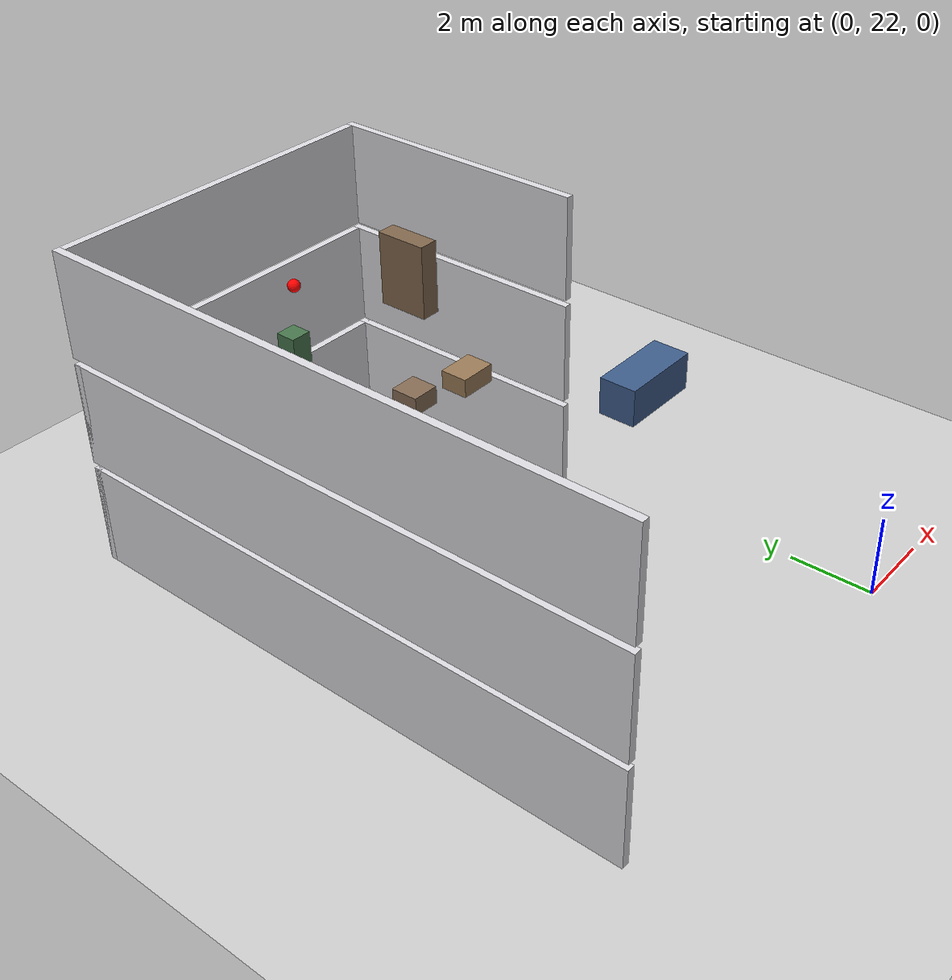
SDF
<sdf version="1.7">
 <world name="generated_world">
  <include><uri>model://sun</uri></include>
  <include><uri>model://ground_plane</uri></include>
  <model name="generated_building">
   <static>true</static>
   <link name="floor_0_room_2_corridor_wall_upper">
    <pose>-1.1900 32.7025 1.2250 0.0000 0.0000 0.0000</pose>
    <collision name="floor_0_room_2_corridor_wall_upper_collision">
     <geometry><box><size>0.1800 6.4150 2.4500</size></box></geometry>
    </collision>
    <visual name="floor_0_room_2_corridor_wall_upper_visual">
     <geometry><box><size>0.1800 6.4150 2.4500</size></box></geometry>
     <material><ambient>0.86 0.86 0.88 1</ambient><diffuse>0.86 0.86 0.88 1</diffuse></material>
    </visual>
    <gravity>false</gravity>
   </link>
   <link name="floor_0_room_2_west_wall">
    <pose>-9.4100 28.8950 1.2250 0.0000 0.0000 0.0000</pose>
    <collision name="floor_0_room_2_west_wall_collision">
     <geometry><box><size>0.1800 14.0300 2.4500</size></box></geometry>
    </collision>
    <visual name="floor_0_room_2_west_wall_visual">
     <geometry><box><size>0.1800 14.0300 2.4500</size></box></geometry>
     <material><ambient>0.86 0.86 0.88 1</ambient><diffuse>0.86 0.86 0.88 1</diffuse></material>
    </visual>
    <gravity>false</gravity>
   </link>
   <link name="floor_0_room_2_north_wall">
    <pose>-5.3000 35.8200 1.2250 0.0000 0.0000 0.0000</pose>
    <collision name="floor_0_room_2_north_wall_collision">
     <geometry><box><size>8.4000 0.1800 2.4500</size></box></geometry>
    </collision>
    <visual name="floor_0_room_2_north_wall_visual">
     <geometry><box><size>8.4000 0.1800 2.4500</size></box></geometry>
     <material><ambient>0.86 0.86 0.88 1</ambient><diffuse>0.86 0.86 0.88 1</diffuse></material>
    </visual>
    <gravity>false</gravity>
   </link>
   <link name="floor_0_room_2_table">
    <pose>-5.3000 28.8950 0.4500 0.0000 0.0000 0.0000</pose>
    <collision name="floor_0_room_2_table_collision">
     <geometry><box><size>2.2000 1.0000 0.7500</size></box></geometry>
    </collision>
    <visual name="floor_0_room_2_table_visual">
     <geometry><box><size>2.2000 1.0000 0.7500</size></box></geometry>
     <material><ambient>0.50 0.38 0.28 1</ambient><diffuse>0.50 0.38 0.28 1</diffuse></material>
    </visual>
    <gravity>false</gravity>
   </link>
   <link name="floor_0_room_2_chair_north">
    <pose>-5.3000 31.9525 0.2800 0.0000 0.0000 0.0000</pose>
    <collision name="floor_0_room_2_chair_north_collision">
     <geometry><box><size>0.5000 0.5000 0.5500</size></box></geometry>
    </collision>
    <visual name="floor_0_room_2_chair_north_visual">
     <geometry><box><size>0.5000 0.5000 0.5500</size></box></geometry>
     <material><ambient>0.30 0.30 0.34 1</ambient><diffuse>0.30 0.30 0.34 1</diffuse></material>
    </visual>
    <gravity>false</gravity>
   </link>
   <link name="floor_0_room_2_chair_west">
    <pose>-7.4500 28.8950 0.2800 0.0000 0.0000 1.5700</pose>
    <collision name="floor_0_room_2_chair_west_collision">
     <geometry><box><size>0.5000 0.5000 0.5500</size></box></geometry>
    </collision>
    <visual name="floor_0_room_2_chair_west_visual">
     <geometry><box><size>0.5000 0.5000 0.5500</size></box></geometry>
     <material><ambient>0.30 0.30 0.34 1</ambient><diffuse>0.30 0.30 0.34 1</diffuse></material>
    </visual>
    <gravity>false</gravity>
   </link>
   <link name="floor_0_room_2_chair_east">
    <pose>-3.1500 28.8950 0.2800 0.0000 0.0000 1.5700</pose>
    <collision name="floor_0_room_2_chair_east_collision">
     <geometry><box><size>0.5000 0.5000 0.5500</size></box></geometry>
    </collision>
    <visual name="floor_0_room_2_chair_east_visual">
     <geometry><box><size>0.5000 0.5000 0.5500</size></box></geometry>
     <material><ambient>0.30 0.30 0.34 1</ambient><diffuse>0.30 0.30 0.34 1</diffuse></material>
    </visual>
    <gravity>false</gravity>
   </link>
   <link name="floor_1_room_2_corridor_wall_upper">
    <pose>-1.1900 32.7025 3.8250 0.0000 0.0000 0.0000</pose>
    <collision name="floor_1_room_2_corridor_wall_upper_collision">
     <geometry><box><size>0.1800 6.4150 2.4500</size></box></geometry>
    </collision>
    <visual name="floor_1_room_2_corridor_wall_upper_visual">
     <geometry><box><size>0.1800 6.4150 2.4500</size></box></geometry>
     <material><ambient>0.86 0.86 0.88 1</ambient><diffuse>0.86 0.86 0.88 1</diffuse></material>
    </visual>
    <gravity>false</gravity>
   </link>
   <link name="floor_1_room_2_west_wall">
    <pose>-9.4100 28.8950 3.8250 0.0000 0.0000 0.0000</pose>
    <collision name="floor_1_room_2_west_wall_collision">
     <geometry><box><size>0.1800 14.0300 2.4500</size></box></geometry>
    </collision>
    <visual name="floor_1_room_2_west_wall_visual">
     <geometry><box><size>0.1800 14.0300 2.4500</size></box></geometry>
     <material><ambient>0.86 0.86 0.88 1</ambient><diffuse>0.86 0.86 0.88 1</diffuse></material>
    </visual>
    <gravity>false</gravity>
   </link>
   <link name="floor_1_room_2_north_wall">
    <pose>-5.3000 35.8200 3.8250 0.0000 0.0000 0.0000</pose>
    <collision name="floor_1_room_2_north_wall_collision">
     <geometry><box><size>8.4000 0.1800 2.4500</size></box></geometry>
    </collision>
    <visual name="floor_1_room_2_north_wall_visual">
     <geometry><box><size>8.4000 0.1800 2.4500</size></box></geometry>
     <material><ambient>0.86 0.86 0.88 1</ambient><diffuse>0.86 0.86 0.88 1</diffuse></material>
    </visual>
    <gravity>false</gravity>
   </link>
   <link name="floor_1_room_2_desk">
    <pose>-7.0000 31.9525 3.0500 0.0000 0.0000 0.0000</pose>
    <collision name="floor_1_room_2_desk_collision">
     <geometry><box><size>1.5000 0.7000 0.7500</size></box></geometry>
    </collision>
    <visual name="floor_1_room_2_desk_visual">
     <geometry><box><size>1.5000 0.7000 0.7500</size></box></geometry>
     <material><ambient>0.54 0.43 0.34 1</ambient><diffuse>0.54 0.43 0.34 1</diffuse></material>
    </visual>
    <gravity>false</gravity>
   </link>
   <link name="floor_1_room_2_chair">
    <pose>-7.0000 31.0525 2.8800 0.0000 0.0000 0.0000</pose>
    <collision name="floor_1_room_2_chair_collision">
     <geometry><box><size>0.5500 0.5500 0.5500</size></box></geometry>
    </collision>
    <visual name="floor_1_room_2_chair_visual">
     <geometry><box><size>0.5500 0.5500 0.5500</size></box></geometry>
     <material><ambient>0.30 0.30 0.34 1</ambient><diffuse>0.30 0.30 0.34 1</diffuse></material>
    </visual>
    <gravity>false</gravity>
   </link>
   <link name="floor_1_room_2_side_table">
    <pose>-3.6000 31.9525 2.9200 0.0000 0.0000 0.0000</pose>
    <collision name="floor_1_room_2_side_table_collision">
     <geometry><box><size>0.7000 0.7000 0.4500</size></box></geometry>
    </collision>
    <visual name="floor_1_room_2_side_table_visual">
     <geometry><box><size>0.7000 0.7000 0.4500</size></box></geometry>
     <material><ambient>0.52 0.42 0.33 1</ambient><diffuse>0.52 0.42 0.33 1</diffuse></material>
    </visual>
    <gravity>false</gravity>
   </link>
   <link name="floor_2_room_2_corridor_wall_upper">
    <pose>-1.1900 32.7025 6.4250 0.0000 0.0000 0.0000</pose>
    <collision name="floor_2_room_2_corridor_wall_upper_collision">
     <geometry><box><size>0.1800 6.4150 2.4500</size></box></geometry>
    </collision>
    <visual name="floor_2_room_2_corridor_wall_upper_visual">
     <geometry><box><size>0.1800 6.4150 2.4500</size></box></geometry>
     <material><ambient>0.86 0.86 0.88 1</ambient><diffuse>0.86 0.86 0.88 1</diffuse></material>
    </visual>
    <gravity>false</gravity>
   </link>
   <link name="floor_2_room_2_west_wall">
    <pose>-9.4100 28.8950 6.4250 0.0000 0.0000 0.0000</pose>
    <collision name="floor_2_room_2_west_wall_collision">
     <geometry><box><size>0.1800 14.0300 2.4500</size></box></geometry>
    </collision>
    <visual name="floor_2_room_2_west_wall_visual">
     <geometry><box><size>0.1800 14.0300 2.4500</size></box></geometry>
     <material><ambient>0.86 0.86 0.88 1</ambient><diffuse>0.86 0.86 0.88 1</diffuse></material>
    </visual>
    <gravity>false</gravity>
   </link>
   <link name="floor_2_room_2_north_wall">
    <pose>-5.3000 35.8200 6.4250 0.0000 0.0000 0.0000</pose>
    <collision name="floor_2_room_2_north_wall_collision">
     <geometry><box><size>8.4000 0.1800 2.4500</size></box></geometry>
    </collision>
    <visual name="floor_2_room_2_north_wall_visual">
     <geometry><box><size>8.4000 0.1800 2.4500</size></box></geometry>
     <material><ambient>0.86 0.86 0.88 1</ambient><diffuse>0.86 0.86 0.88 1</diffuse></material>
    </visual>
    <gravity>false</gravity>
   </link>
   <link name="floor_2_room_2_sofa_b">
    <pose>-3.6000 25.8375 5.6500 0.0000 0.0000 3.1400</pose>
    <collision name="floor_2_room_2_sofa_b_collision">
     <geometry><box><size>1.8000 0.8000 0.8000</size></box></geometry>
    </collision>
    <visual name="floor_2_room_2_sofa_b_visual">
     <geometry><box><size>1.8000 0.8000 0.8000</size></box></geometry>
     <material><ambient>0.24 0.36 0.54 1</ambient><diffuse>0.24 0.36 0.54 1</diffuse></material>
    </visual>
    <gravity>false</gravity>
   </link>
   <link name="floor_2_room_2_coffee_table">
    <pose>-5.3000 28.8950 5.4500 0.0000 0.0000 0.0000</pose>
    <collision name="floor_2_room_2_coffee_table_collision">
     <geometry><box><size>0.8000 0.6000 0.4000</size></box></geometry>
    </collision>
    <visual name="floor_2_room_2_coffee_table_visual">
     <geometry><box><size>0.8000 0.6000 0.4000</size></box></geometry>
     <material><ambient>0.60 0.48 0.34 1</ambient><diffuse>0.60 0.48 0.34 1</diffuse></material>
    </visual>
    <gravity>false</gravity>
   </link>
   <link name="floor_2_room_2_bookshelf">
    <pose>-3.6000 31.9525 6.0500 0.0000 0.0000 0.0000</pose>
    <collision name="floor_2_room_2_bookshelf_collision">
     <geometry><box><size>0.4500 1.2000 1.7000</size></box></geometry>
    </collision>
    <visual name="floor_2_room_2_bookshelf_visual">
     <geometry><box><size>0.4500 1.2000 1.7000</size></box></geometry>
     <material><ambient>0.50 0.40 0.30 1</ambient><diffuse>0.50 0.40 0.30 1</diffuse></material>
    </visual>
    <gravity>false</gravity>
   </link>
   <link name="floor_2_room_2_planter">
    <pose>-7.0000 31.9525 5.6500 0.0000 0.0000 0.0000</pose>
    <collision name="floor_2_room_2_planter_collision">
     <geometry><box><size>0.4500 0.4500 0.9000</size></box></geometry>
    </collision>
    <visual name="floor_2_room_2_planter_visual">
     <geometry><box><size>0.4500 0.4500 0.9000</size></box></geometry>
     <material><ambient>0.28 0.46 0.30 1</ambient><diffuse>0.28 0.46 0.30 1</diffuse></material>
    </visual>
    <gravity>false</gravity>
   </link>
  </model>
  <model name="distractor_red_box_01">
   <static>true</static>
   <pose>-8.833333 26.212664 5.350000 0.000000 0.000000 0.000000</pose>
   <link name="link">
    <collision name="collision">
     <geometry><box><size>0.300000 0.300000 0.300000</size></box></geometry>
    </collision>
    <visual name="visual">
     <geometry><box><size>0.300000 0.300000 0.300000</size></box></geometry>
     <material><ambient>1.0 0.0 0.0 1.0</ambient><diffuse>1.0 0.0 0.0 1.0</diffuse></material>
    </visual>
   </link>
  </model>
  <model name="danger_red_sphere_01">
   <static>true</static>
   <pose>-4.643373 34.214386 2.750000 0.000000 0.000000 0.000000</pose>
   <link name="link">
    <collision name="collision"><geometry><sphere><radius>0.150</radius></sphere></geometry></collision>
    <visual name="visual">
     <geometry><sphere><radius>0.150</radius></sphere></geometry>
     <material><ambient>1.0 0.0 0.0 1.0</ambient><diffuse>1.0 0.0 0.0 1.0</diffuse></material>
    </visual>
   </link>
  </model>
  <model name="danger_red_sphere_04">
   <static>true</static>
   <pose>-4.679478 34.414713 5.350000 0.000000 0.000000 0.000000</pose>
   <link name="link">
    <collision name="collision"><geometry><sphere><radius>0.150</radius></sphere></geometry></collision>
    <visual name="visual">
     <geometry><sphere><radius>0.150</radius></sphere></geometry>
     <material><ambient>1.0 0.0 0.0 1.0</ambient><diffuse>1.0 0.0 0.0 1.0</diffuse></material>
    </visual>
   </link>
  </model>
 </world>
</sdf>
